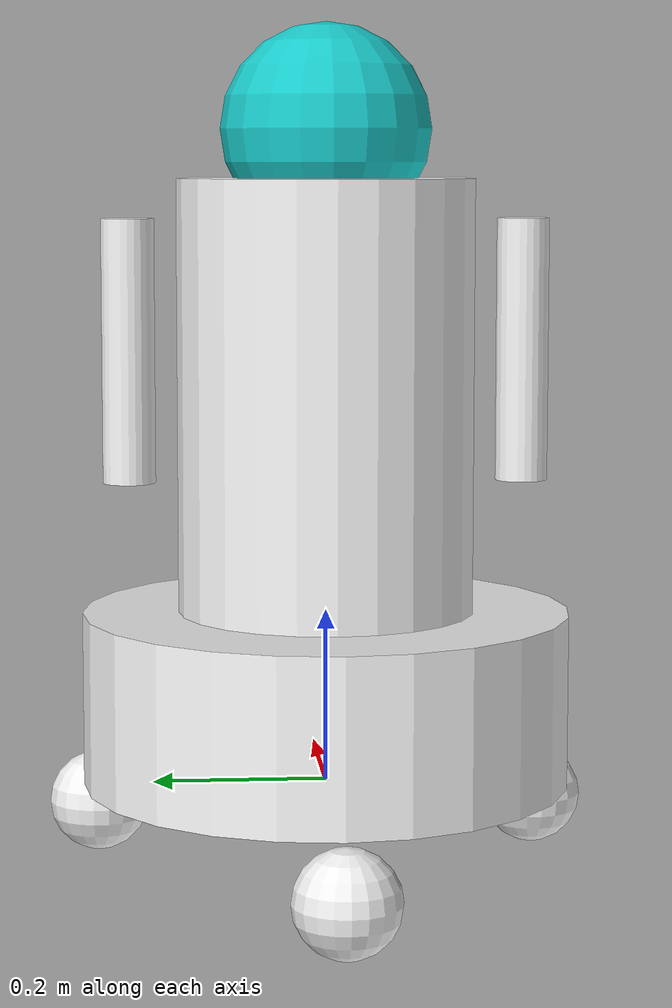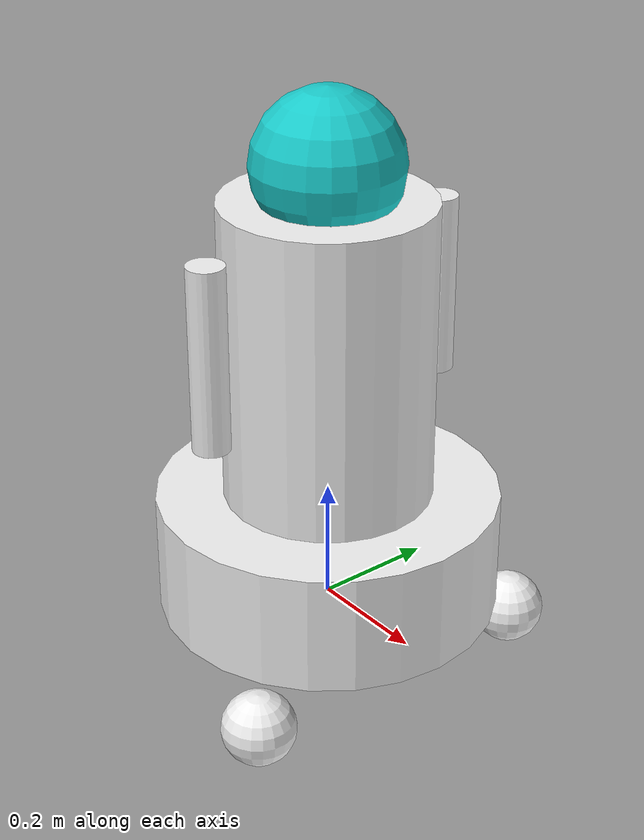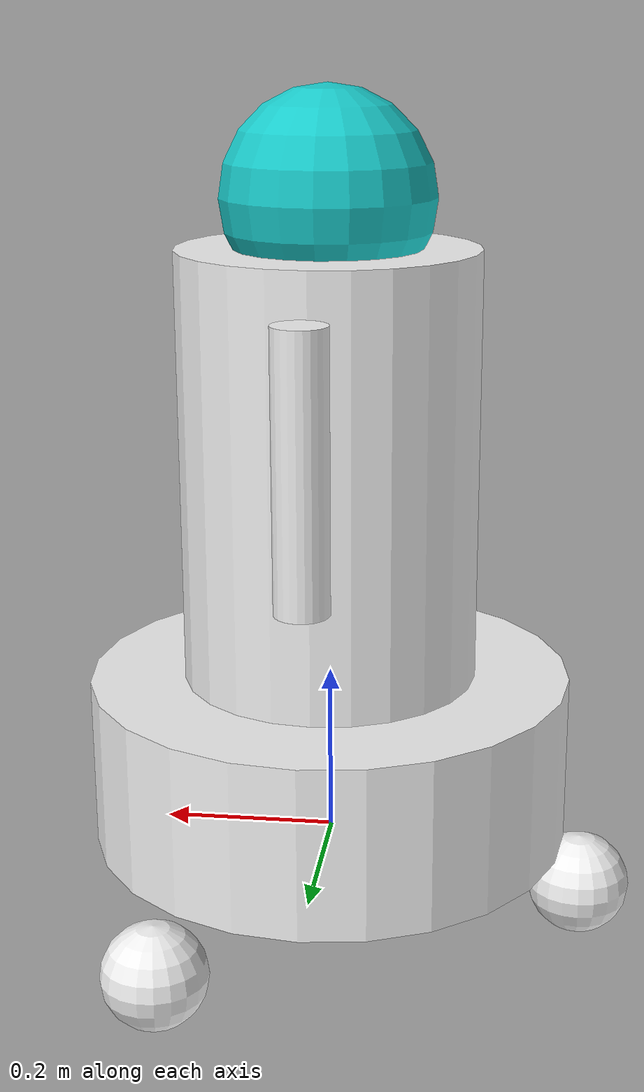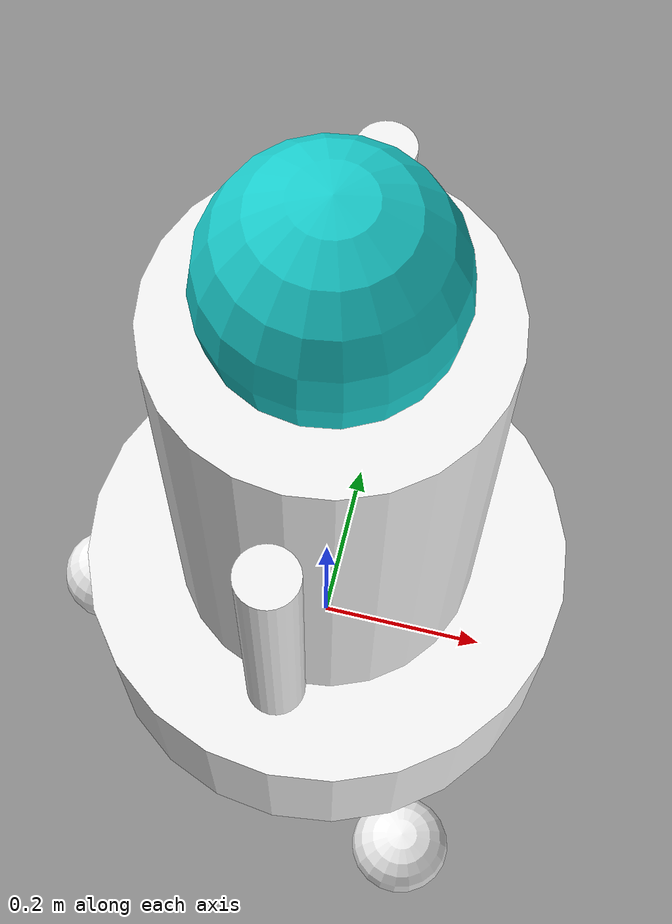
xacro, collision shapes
<?xml version="1.0"?>
<robot xmlns:xacro="http://www.ros.org/wiki/xacro" name="semubot">

  <xacro:include filename="$(find semubot_description)/urdf/materials.xacro"/>
  <xacro:include filename="$(find semubot_description)/urdf/macros/base.xacro"/>
  <xacro:include filename="$(find semubot_description)/urdf/macros/torso.xacro"/>
  <xacro:include filename="$(find semubot_description)/urdf/macros/head.xacro"/>
  <xacro:include filename="$(find semubot_description)/urdf/macros/arms.xacro"/>
  <xacro:include filename="$(find semubot_description)/urdf/macros/sensors.xacro"/>

  <xacro:semubot_base/>
  <xacro:semubot_torso parent="base_link"/>
  <xacro:semubot_head parent="torso_link" xyz="0 0 0.705"/>
  <xacro:semubot_arms parent="torso_link"/>
  <xacro:semubot_sensors parent="torso_link"/>

</robot>

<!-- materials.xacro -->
<robot xmlns:xacro="http://www.ros.org/wiki/xacro">
  <material name="semubot_white">
    <color rgba="0.95 0.95 0.95 1.0"/>
  </material>
  <material name="semubot_cyan">
    <color rgba="0.1 0.8 0.8 1.0"/>
  </material>
  <material name="semubot_black">
    <color rgba="0.1 0.1 0.1 1.0"/>
  </material>
</robot>

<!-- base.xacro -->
<robot xmlns:xacro="http://www.ros.org/wiki/xacro">
  <xacro:macro name="semubot_base" params="">
    <!-- Ground-projected body frame for navigation and footprint reasoning. -->
    <link name="base_footprint"/>

    <!-- Main mobile-base body frame. -->
    <link name="base_link">
      <visual>
        <origin xyz="0 0 0.04" rpy="0 0 0"/>
        <geometry>
          <mesh filename="package://semubot_description/meshes/visual/movement_frame.stl" scale="1 1 1"/>
        </geometry>
        <material name="semubot_white"/>
      </visual>
      <collision>
        <origin xyz="0 0 0.10" rpy="0 0 0"/>
        <geometry>
          <cylinder radius="0.28" length="0.20"/>
        </geometry>
      </collision>
      <inertial>
        <origin xyz="0 0 0.10" rpy="0 0 0"/>
        <mass value="8.0"/>
        <inertia ixx="0.200" ixy="0.0" ixz="0.0" iyy="0.200" iyz="0.0" izz="0.200"/>
      </inertial>
    </link>

    <joint name="base_footprint_to_base_link" type="fixed">
      <parent link="base_footprint"/>
      <child link="base_link"/>
      <origin xyz="0 0 0" rpy="0 0 0"/>
    </joint>

    <!-- Omni-ball visual links. Collision is simplified via spheres for performance. -->
    <link name="omni_ball_1">
      <visual>
        <geometry>
          <mesh filename="package://semubot_description/meshes/visual/omni_ball.stl" scale="1 1 1"/>
        </geometry>
        <material name="semubot_white"/>
      </visual>
      <collision>
        <geometry>
          <sphere radius="0.06"/>
        </geometry>
      </collision>
      <inertial>
        <mass value="0.1"/>
        <origin xyz="0 0 0" rpy="0 0 0"/>
        <inertia ixx="0.001" ixy="0.0" ixz="0.0" iyy="0.001" iyz="0.0" izz="0.001"/>
      </inertial>
    </link>
    <joint name="omni_ball_1_joint" type="continuous">
      <parent link="base_link"/>
      <child link="omni_ball_1"/>
      <!-- Lowered Z to keep visual omni-balls below the movement frame. -->
      <origin xyz="0.16 0.265 -0.06" rpy="0 0 2.0944"/>
      <axis xyz="1 0 0"/>
      <limit effort="50" velocity="1.0"/>
    </joint>

    <link name="omni_ball_2">
      <visual>
        <geometry>
          <mesh filename="package://semubot_description/meshes/visual/omni_ball.stl" scale="1 1 1"/>
        </geometry>
        <material name="semubot_white"/>
      </visual>
      <collision>
        <geometry>
          <sphere radius="0.06"/>
        </geometry>
      </collision>
      <inertial>
        <mass value="0.1"/>
        <origin xyz="0 0 0" rpy="0 0 0"/>
        <inertia ixx="0.001" ixy="0.0" ixz="0.0" iyy="0.001" iyz="0.0" izz="0.001"/>
      </inertial>
    </link>
    <joint name="omni_ball_2_joint" type="continuous">
      <parent link="base_link"/>
      <child link="omni_ball_2"/>
      <origin xyz="0.16 -0.265 -0.06" rpy="0 0 -2.0944"/>
      <axis xyz="1 0 0"/>
      <limit effort="50" velocity="1.0"/>
    </joint>

    <link name="omni_ball_3">
      <visual>
        <geometry>
          <mesh filename="package://semubot_description/meshes/visual/omni_ball.stl" scale="1 1 1"/>
        </geometry>
        <material name="semubot_white"/>
      </visual>
      <collision>
        <geometry>
          <sphere radius="0.06"/>
        </geometry>
      </collision>
      <inertial>
        <mass value="0.1"/>
        <origin xyz="0 0 0" rpy="0 0 0"/>
        <inertia ixx="0.001" ixy="0.0" ixz="0.0" iyy="0.001" iyz="0.0" izz="0.001"/>
      </inertial>
    </link>
    <joint name="omni_ball_3_joint" type="continuous">
      <parent link="base_link"/>
      <child link="omni_ball_3"/>
      <origin xyz="-0.3 0 -0.06" rpy="0 0 0"/>
      <axis xyz="1 0 0"/>
      <limit effort="50" velocity="1.0"/>
    </joint>
  </xacro:macro>
</robot>

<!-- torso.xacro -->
<robot xmlns:xacro="http://www.ros.org/wiki/xacro">
  <xacro:macro name="semubot_torso" params="parent">
    <link name="torso_link">
      <visual>
        <!-- Visual origin follows legacy SemuBot description mesh alignment. -->
        <origin xyz="0 0 0" rpy="0 0 0"/>
        <geometry>
          <mesh filename="package://semubot_description/meshes/visual/body.stl" scale="1 1 1"/>
        </geometry>
        <material name="semubot_white"/>
      </visual>
      <collision>
        <!-- Collision remains simplified for Nav2/costmap stability. -->
        <origin xyz="0 0 0.40" rpy="0 0 0"/>
        <geometry>
          <cylinder radius="0.17" length="0.50"/>
        </geometry>
      </collision>
      <inertial>
        <origin xyz="0 0 0.40" rpy="0 0 0"/>
        <mass value="3.5"/>
        <inertia ixx="0.05" ixy="0.0" ixz="0.0" iyy="0.05" iyz="0.0" izz="0.05"/>
      </inertial>
    </link>

    <joint name="base_to_torso" type="fixed">
      <parent link="${parent}"/>
      <child link="torso_link"/>
      <!-- Legacy-aligned torso mounting offset from base_link. -->
      <origin xyz="0 0 0.045" rpy="0 0 0"/>
    </joint>
  </xacro:macro>
</robot>

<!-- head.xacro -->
<robot xmlns:xacro="http://www.ros.org/wiki/xacro">
  <xacro:macro name="semubot_head" params="parent xyz:='0 0 0' rpy:='0 0 0'">
    <link name="head_base_link">
      <visual>
        <geometry>
          <mesh filename="package://semubot_description/meshes/visual/head_base.stl" scale="1 1 1"/>
        </geometry>
        <material name="semubot_white"/>
      </visual>
      <collision>
        <geometry>
          <cylinder radius="0.09" length="0.12"/>
        </geometry>
      </collision>
      <inertial>
        <mass value="0.6"/>
        <origin xyz="0 0 0" rpy="0 0 0"/>
        <inertia ixx="0.006" ixy="0.0" ixz="0.0" iyy="0.006" iyz="0.0" izz="0.006"/>
      </inertial>
    </link>

    <joint name="head_yaw_joint" type="continuous">
      <parent link="${parent}"/>
      <child link="head_base_link"/>
      <origin xyz="${xyz}" rpy="${rpy}"/>
      <axis xyz="0 0 1"/>
      <limit effort="2.0" velocity="0.5"/>
    </joint>

    <link name="head_scalp_link">
      <visual>
        <geometry>
          <mesh filename="package://semubot_description/meshes/visual/head_scalp.stl" scale="1 1 1"/>
        </geometry>
        <material name="semubot_cyan"/>
      </visual>
      <collision>
        <geometry>
          <sphere radius="0.12"/>
        </geometry>
      </collision>
      <inertial>
        <mass value="0.25"/>
        <origin xyz="0 0 0" rpy="0 0 0"/>
        <inertia ixx="0.003" ixy="0.0" ixz="0.0" iyy="0.003" iyz="0.0" izz="0.003"/>
      </inertial>
    </link>

    <joint name="head_scalp_joint" type="fixed">
      <parent link="head_base_link"/>
      <child link="head_scalp_link"/>
      <origin xyz="0 0 0" rpy="0 0 0"/>
    </joint>

    <link name="head_screen_link">
      <visual>
        <geometry>
          <mesh filename="package://semubot_description/meshes/visual/head_screen.stl" scale="1 1 1"/>
        </geometry>
        <material name="semubot_black"/>
      </visual>
      <collision>
        <geometry>
          <box size="0.10 0.02 0.08"/>
        </geometry>
      </collision>
      <inertial>
        <mass value="0.15"/>
        <origin xyz="0 0 0" rpy="0 0 0"/>
        <inertia ixx="0.0015" ixy="0.0" ixz="0.0" iyy="0.0015" iyz="0.0" izz="0.0015"/>
      </inertial>
    </link>

    <joint name="head_screen_joint" type="fixed">
      <parent link="head_base_link"/>
      <child link="head_screen_link"/>
      <origin xyz="0 0 0" rpy="0 0 0"/>
    </joint>
  </xacro:macro>
</robot>

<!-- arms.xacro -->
<robot xmlns:xacro="http://www.ros.org/wiki/xacro">
  <xacro:macro name="semubot_arms" params="parent">
    <link name="left_arm_link">
      <visual>
        <geometry>
          <mesh filename="package://semubot_description/meshes/visual/left_hand.stl" scale="1 1 1"/>
        </geometry>
        <material name="semubot_white"/>
      </visual>
      <collision>
        <origin xyz="0 0.05 -0.10" rpy="0 0 0"/>
        <geometry>
          <cylinder radius="0.03" length="0.30"/>
        </geometry>
      </collision>
      <inertial>
        <origin xyz="0 0 0" rpy="0 0 0"/>
        <mass value="0.5"/>
        <inertia ixx="0.01" ixy="0.0" ixz="0.0" iyy="0.01" iyz="0.0" izz="0.01"/>
      </inertial>
    </link>

    <joint name="left_arm_joint" type="revolute">
      <parent link="${parent}"/>
      <child link="left_arm_link"/>
      <origin xyz="0 0.175 0.555" rpy="0 0 0"/>
      <axis xyz="0 1 0"/>
      <limit lower="-1.2" upper="1.2" effort="5.0" velocity="0.5"/>
    </joint>

    <link name="right_arm_link">
      <visual>
        <geometry>
          <mesh filename="package://semubot_description/meshes/visual/right_hand.stl" scale="1 1 1"/>
        </geometry>
        <material name="semubot_white"/>
      </visual>
      <collision>
        <origin xyz="0 -0.05 -0.10" rpy="0 0 0"/>
        <geometry>
          <cylinder radius="0.03" length="0.30"/>
        </geometry>
      </collision>
      <inertial>
        <origin xyz="0 0 0" rpy="0 0 0"/>
        <mass value="0.5"/>
        <inertia ixx="0.01" ixy="0.0" ixz="0.0" iyy="0.01" iyz="0.0" izz="0.01"/>
      </inertial>
    </link>

    <joint name="right_arm_joint" type="revolute">
      <parent link="${parent}"/>
      <child link="right_arm_link"/>
      <origin xyz="0 -0.175 0.555" rpy="0 0 0"/>
      <axis xyz="0 1 0"/>
      <limit lower="-1.2" upper="1.2" effort="5.0" velocity="0.5"/>
    </joint>
  </xacro:macro>
</robot>

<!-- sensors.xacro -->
<robot xmlns:xacro="http://www.ros.org/wiki/xacro">
  <xacro:macro name="semubot_sensors" params="parent">
    <!-- Camera placeholder frame; update pose once camera mount is validated. -->
    <link name="camera_link"/>
    <joint name="torso_to_camera" type="fixed">
      <parent link="${parent}"/>
      <child link="camera_link"/>
      <origin xyz="0.10 0 0.32" rpy="0 0 0"/>
    </joint>

    <link name="microphone_array_link"/>
    <joint name="torso_to_microphone_array" type="fixed">
      <parent link="${parent}"/>
      <child link="microphone_array_link"/>
      <origin xyz="0.05 0 0.30" rpy="0 0 0"/>
    </joint>

    <!-- Mock laser frame for Nav2 readiness tests. -->
    <link name="laser_frame"/>
    <joint name="base_to_laser" type="fixed">
      <parent link="base_link"/>
      <child link="laser_frame"/>
      <origin xyz="0.12 0 0.18" rpy="0 0 0"/>
    </joint>
  </xacro:macro>
</robot>
